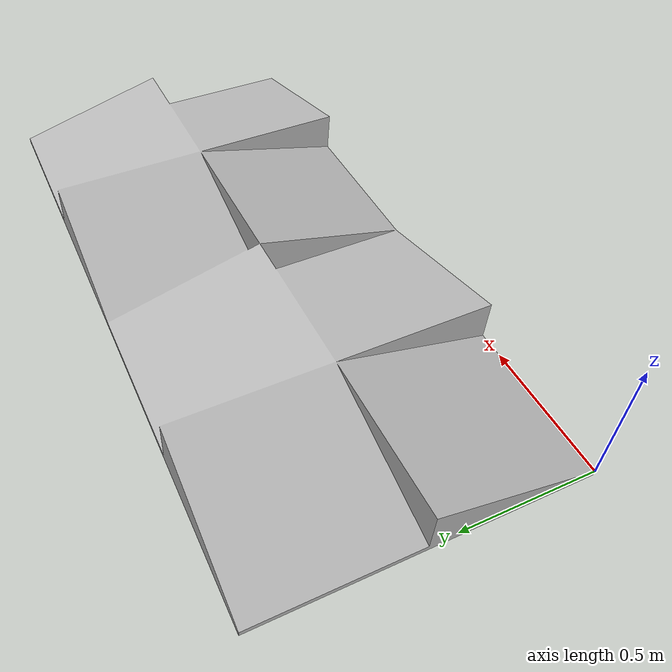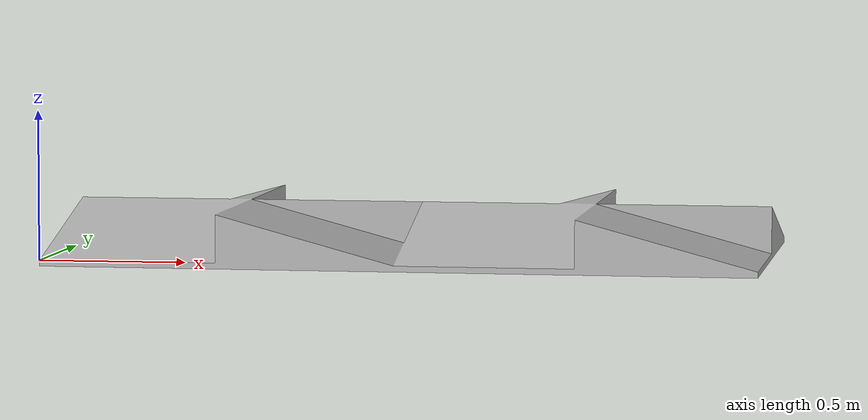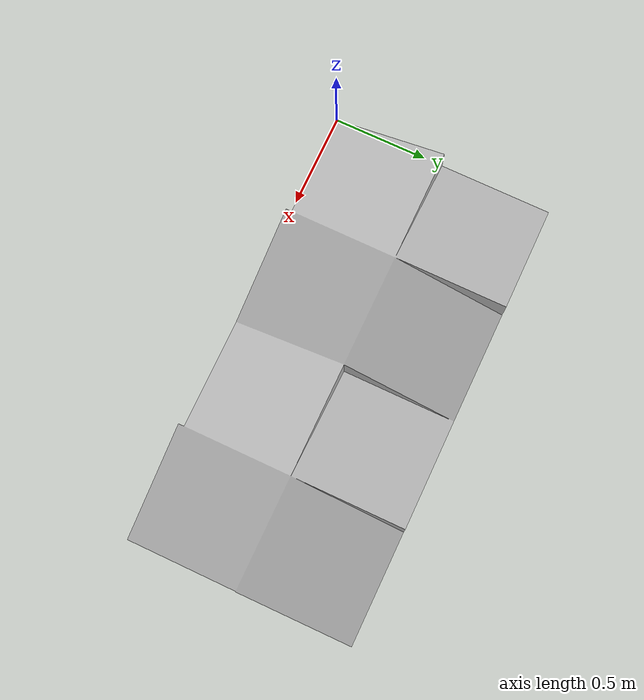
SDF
<?xml version="1.0" ?>
<sdf version="1.6">
  <model name="continuesramp">
    <static>true</static>
    <pose>0 0 0 0 0 0</pose>
    <link name="link">
      <collision name="collision">
        <geometry>
          <mesh>
            <scale>0.01 0.01 0.01</scale>
            <uri>model://continuesramp/ContinuesRamp_120_240.stl</uri>
          </mesh>
        </geometry>
        <surface>
          <friction>
            <ode>
              <mu>100</mu>
              <mu2>50</mu2>
            </ode>
          </friction>
        </surface>
      </collision>
      <visual name="visual">
        <geometry>
          <mesh>
            <scale>0.01 0.01 0.01</scale>
            <uri>model://continuesramp/ContinuesRamp_120_240.stl</uri>
          </mesh>
        </geometry>
      </visual>
    </link>
  </model>
</sdf>
